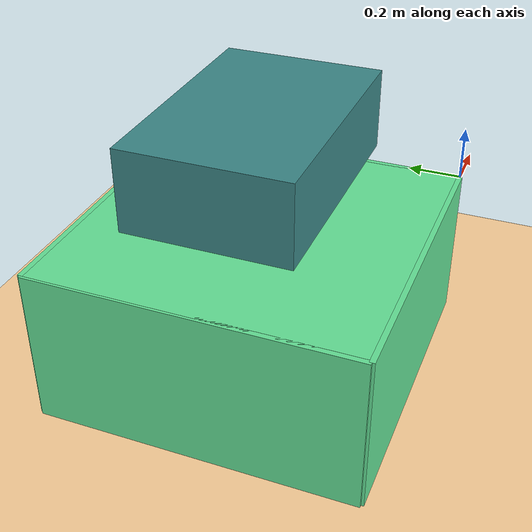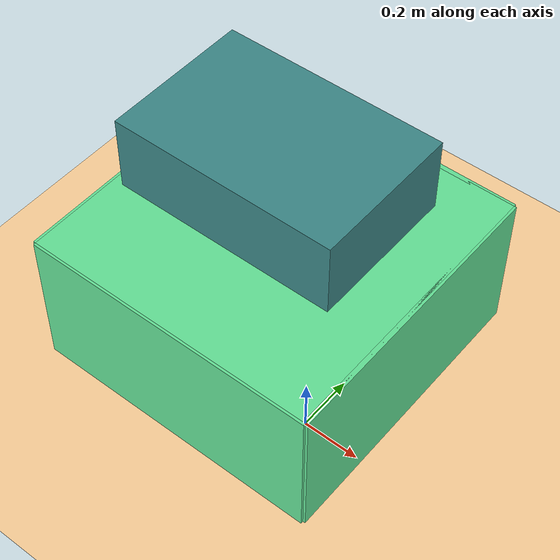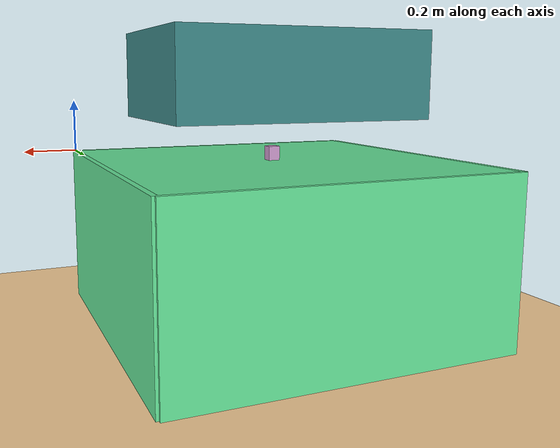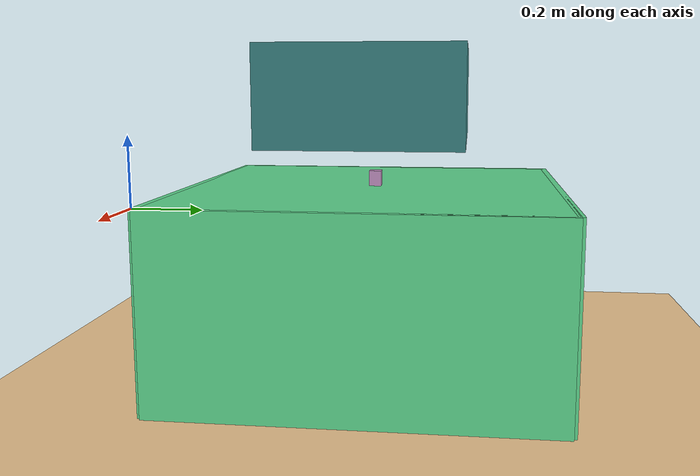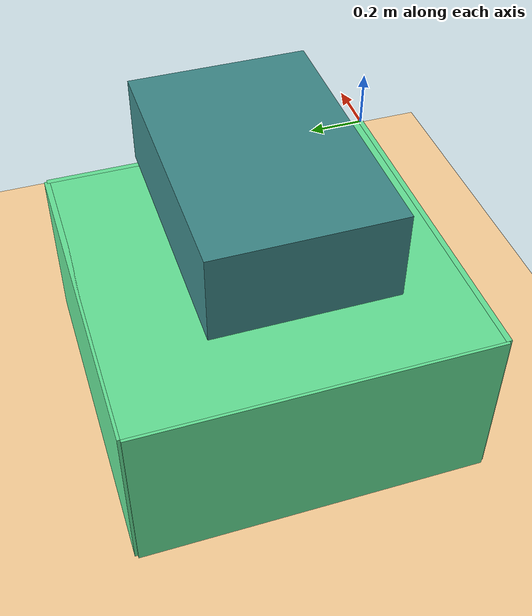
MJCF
<mujoco model="ur5">
    <compiler angle="radian" meshdir="meshes/YCB" coordinate="local" />

    <option gravity="0 0 -9.81" cone="elliptic" timestep="0.02" />

    <size njmax="500" nconmax="100" />

    <visual>
        <map znear="0.001" />
    </visual>

    <default>
        <light castshadow="false" diffuse="1 1 1" />
        <joint frictionloss="1" damping="1" />
        <camera fovy="60" />
        <motor gear="0.8"/>
        <velocity kv="10"/>
        <position kp="5"/>

        <default class="object1">
            <geom type="capsule" material="object1" size="0.03 0.015"/>
        </default>

        <default class="object2">
            <geom type="ellipsoid" material="object2" size="0.045 0.03 0.021"/>
        </default>

        <default class="object3">
            <geom type="box" material="object3" size="0.45 0.3 0.15"/>
        </default>

        <default class="object4">
            <geom type="cylinder" material="object4" size="0.03 0.015" condim="4" friction="1 .01 .01"/>
        </default>

        <default class="object5">
            <geom type="sphere" material="object5" size="0.03"/>
        </default>

    </default>

    <asset>
        <!-- size: (40mm) 0.08 0.08 (9.47mm)-->
        <!-- size: 7.75mm 40mm -->

        <!-- mesh of YCB ojbect -->
        <mesh name="1" file="chefcan.stl" />
        <mesh name="2" file="crackerbox.stl" />
        <mesh name="3" file="fishcan.stl" />
        <mesh name="4" file="gelatinbox.stl" />
        <mesh name="5" file="puddingbox.stl" />
        <mesh name="6" file="meatcan.stl" />
        <mesh name="7" file="mustardbottle.stl" />

        <material name="RobMat" specular="0.9" shininess="0.5" reflectance="0" rgba="0.7 0.7 0.7 1" emission="0.1" />
        <material name="GriMat" specular="0.9" shininess="0.5" reflectance="0" rgba="0.1 0.1 0.1 1" emission="0.1" />
        <material name="BasketMat" specular="0" shininess="0" reflectance="0" rgba="0.26 0.16 0.16796875 1" emission="0" />
        <material name="Light" specular="0" shininess="0.6" reflectance="0.9" rgba="0.5 0.5 1 1" emission="0.7" />
        <texture name="texgeom" type="cube" builtin="flat" mark="cross" width="128" height="128"
            rgb1="0.6 0.6 0.6" rgb2="0.6 0.6 0.6" markrgb="1 1 1"/>

        <material name='object1' texture="texgeom" texuniform="true" rgba=".4 .9 .6 1" />
        <material name='object2' texture="texgeom" texuniform="true" rgba=".4 .6 .9 1" />
        <material name='object3' texture="texgeom" texuniform="true" rgba=".4 .9 .9 1" />
        <material name='object4' texture="texgeom" texuniform="true" rgba=".8 .6 .8 1" />
        <material name='object5' texture="texgeom" texuniform="true" rgba=".9 .1 .1 1" />
    </asset>

    <worldbody>

        <body name="cameramover" pos="-0.6 0.6 0" quat="0.707 0 0 0.707">
            <inertial pos="0 0 0" quat="1 0 0 0" mass="0.1" diaginertia="0.1 0.1 0.1"/>

            <joint name="camera_joint1" type="slide" axis="1 0 0" pos="0 0 0"/>
            <joint name="camera_joint2" type="slide" axis="0 1 0" pos="0 0 0"/>
            <joint name="camera_joint3" type="slide" axis="0 0 1" pos="0 0 0"/>
            <body>
                <inertial pos="0 0 0" quat="1 0 0 0" mass="0.1" diaginertia="0.1 0.1 0.1"/>
                <joint name="camera_joint6" type="hinge" axis="0 0 1" pos="0 0 0"/>
                <joint name="camera_joint4" type="hinge" axis="1 0 0" pos="0 0 0"/>
                <joint name="camera_joint5" type="hinge" axis="0 1 0" pos="0 0 0"/>

                <camera name="mycamera" fovy="45" ipd="0.068" pos="0 0 0" quat="0.707 0 0 0.707" />
                <site name="site" pos="0 0 0" size="0.02 0.02 0.05" type="box" rgba=".8 .6 .8 1" />
            </body>
        </body>

        <light directional="true" pos="-0.5 0.5 3" dir="0 0 -1" />
        <light directional="false" pos="-0.5 0.5 1.5" dir="0 -1 0" />

        <geom name="workbench_down" pos="-0.6 0.6 -0.25" size="0.6 0.6 0.25" type="box" rgba=".4 .9 .6 1" material="BasketMat" />
        <geom name="workbench_down_side1" pos="-1.2 0.6 -0.30" size="0.01 0.6 0.3" type="box" rgba=".4 .9 .6 1" material="BasketMat" />
        <geom name="workbench_down_side2" pos="0 0.6 -0.30" size="0.01 0.6 0.3" type="box" rgba=".4 .9 .6 1" material="BasketMat" />
        <geom name="workbench_down_side3" pos="-0.6 0 -0.30" size="0.6 0.01 0.3" type="box" rgba=".4 .9 .6 1" material="BasketMat" />
        <geom name="workbench_down_side4" pos="-0.6 1.2 -0.30" size="0.6 0.01 0.3" type="box" rgba=".4 .9 .6 1" material="BasketMat" />
        <geom name="floor" pos="0 0 -0.66" size="10 10 1" type="plane" rgba="1 0.83 0.61 1" material="BasketMat" />

        <!-- free object -->

        <body name = "object4" pos="-0.6 0.6 0.3" >
            <geom class="object3"/>
        </body>

    </worldbody>

    <actuator>
        <!--velocity name="gripper_velocity" joint="gripper_joint_left" gear="0.04" /-->

    </actuator>

</mujoco>
